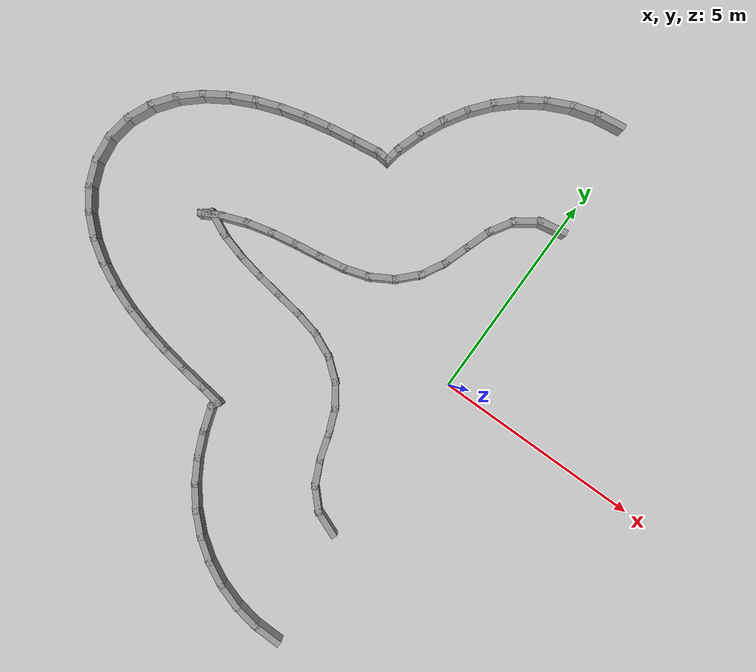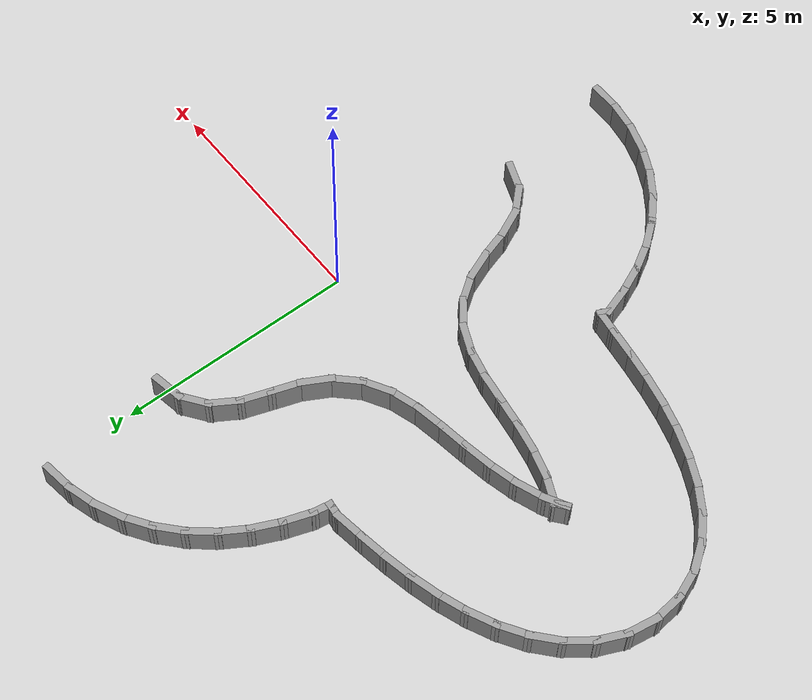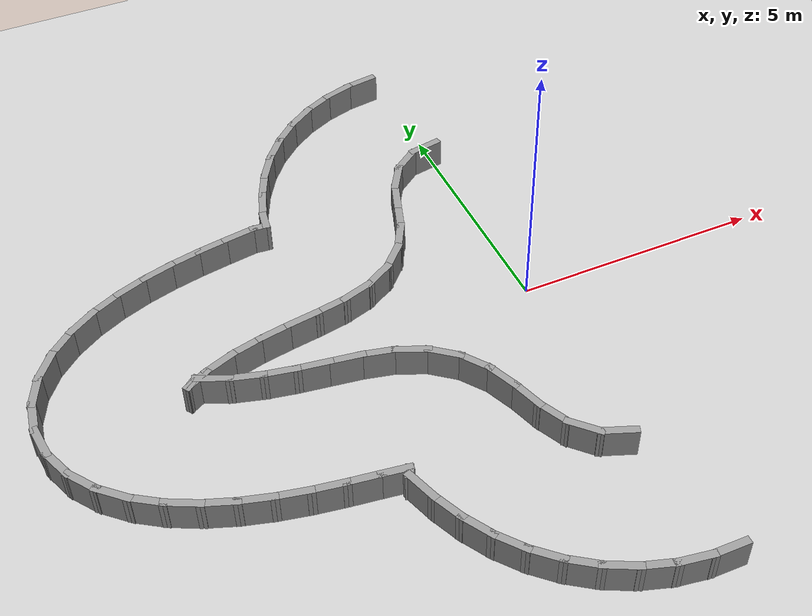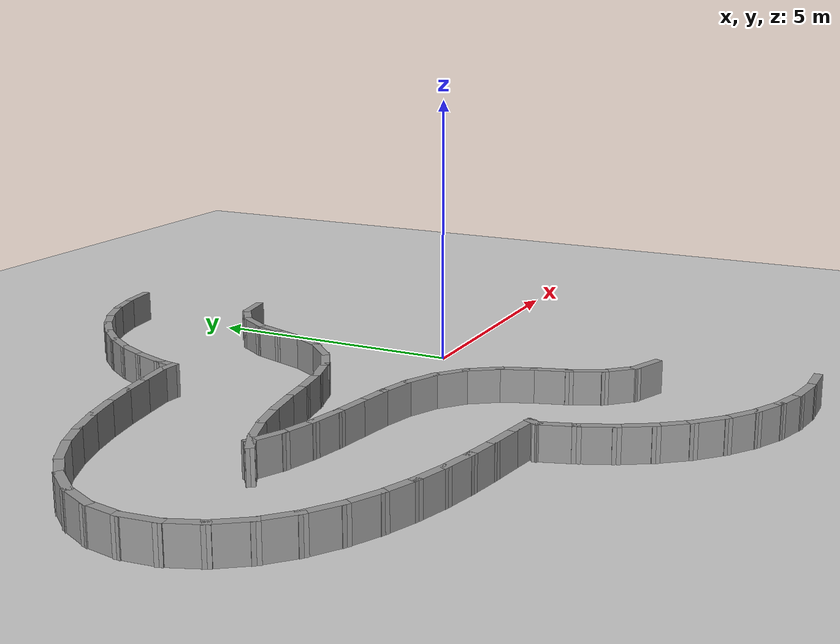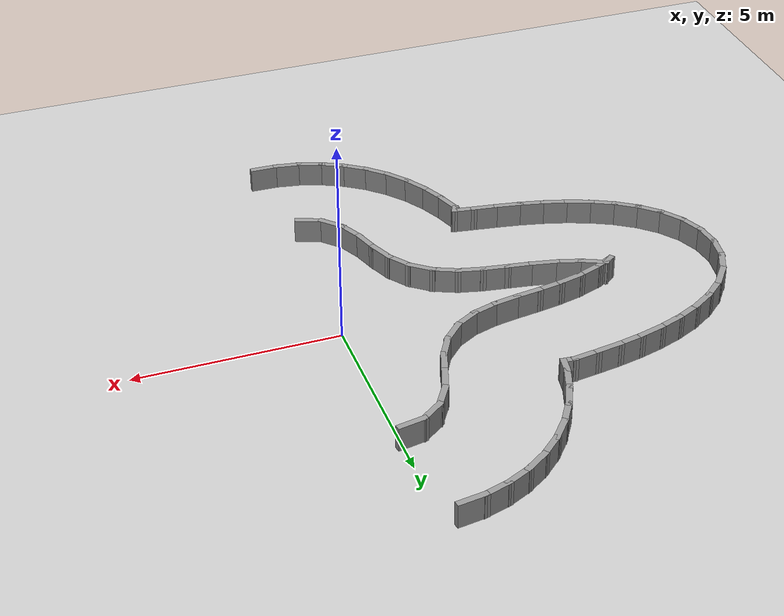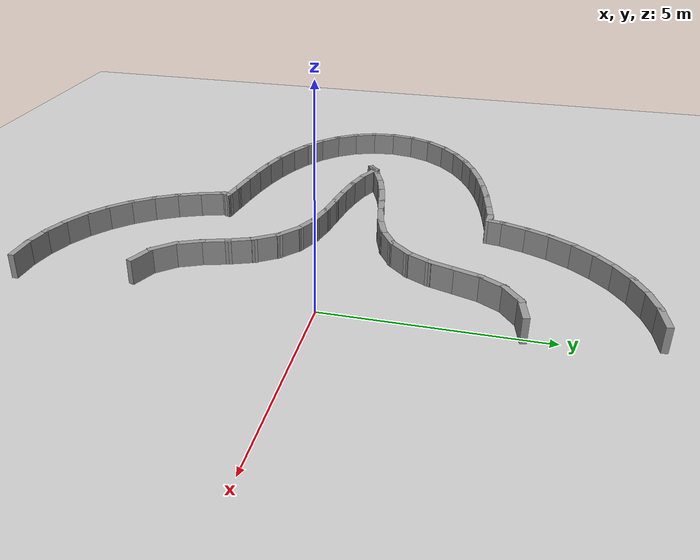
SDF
<sdf version="1.7">
 <world name="default">
  <model name="ground_plane">
   <static>1</static>
   <link name="link">
    <collision name="collision">
     <geometry><plane><normal>0 0 1</normal><size>100 100</size></plane></geometry>
     <surface><friction><ode><mu>100</mu><mu2>50</mu2></ode></friction></surface>
    </collision>
    <visual name="visual">
     <cast_shadows>0</cast_shadows>
     <geometry><plane><normal>0 0 1</normal><size>100 100</size></plane></geometry>
     <material>
      <script><uri>file://media/materials/scripts/gazebo.material</uri><name>Gazebo/Grey</name></script>
     </material>
    </visual>
   </link>
  </model>
  <model name="rand_lobed_05">
   <link name="Wall_15">
    <collision name="Wall_15_Collision">
     <geometry><box><size>0.7447 0.1500 0.6000</size></box></geometry>
     <pose>0 0 0.3000 0 -0 0</pose>
    </collision>
    <visual name="Wall_15_Visual">
     <pose>0 0 0.3000 0 -0 0</pose>
     <geometry><box><size>0.7447 0.1500 0.6000</size></box></geometry>
     <material>
      <script><uri>file://media/materials/scripts/gazebo.material</uri><name>Gazebo/Grey</name></script>
      <ambient>1 1 1 1</ambient>
     </material>
    </visual>
    <pose>-0.2285 4.2274 0 0 -0 -2.95936</pose>
   </link>
   <link name="Wall_16">
    <collision name="Wall_16_Collision">
     <geometry><box><size>0.7453 0.1500 0.6000</size></box></geometry>
     <pose>0 0 0.3000 0 -0 0</pose>
    </collision>
    <visual name="Wall_16_Visual">
     <pose>0 0 0.3000 0 -0 0</pose>
     <geometry><box><size>0.7453 0.1500 0.6000</size></box></geometry>
     <material>
      <script><uri>file://media/materials/scripts/gazebo.material</uri><name>Gazebo/Grey</name></script>
      <ambient>1 1 1 1</ambient>
     </material>
    </visual>
    <pose>-0.7605 3.9970 0 0 -0 -2.50664</pose>
   </link>
   <link name="Wall_17">
    <collision name="Wall_17_Collision">
     <geometry><box><size>0.7475 0.1500 0.6000</size></box></geometry>
     <pose>0 0 0.3000 0 -0 0</pose>
    </collision>
    <visual name="Wall_17_Visual">
     <pose>0 0 0.3000 0 -0 0</pose>
     <geometry><box><size>0.7475 0.1500 0.6000</size></box></geometry>
     <material>
      <script><uri>file://media/materials/scripts/gazebo.material</uri><name>Gazebo/Grey</name></script>
      <ambient>1 1 1 1</ambient>
     </material>
    </visual>
    <pose>-1.1570 3.5662 0 0 -0 -2.12377</pose>
   </link>
   <link name="Wall_18">
    <collision name="Wall_18_Collision">
     <geometry><box><size>0.7496 0.1500 0.6000</size></box></geometry>
     <pose>0 0 0.3000 0 -0 0</pose>
    </collision>
    <visual name="Wall_18_Visual">
     <pose>0 0 0.3000 0 -0 0</pose>
     <geometry><box><size>0.7496 0.1500 0.6000</size></box></geometry>
     <material>
      <script><uri>file://media/materials/scripts/gazebo.material</uri><name>Gazebo/Grey</name></script>
      <ambient>1 1 1 1</ambient>
     </material>
    </visual>
    <pose>-1.4110 3.0284 0 0 -0 -1.90061</pose>
   </link>
   <link name="Wall_19">
    <collision name="Wall_19_Collision">
     <geometry><box><size>0.7497 0.1500 0.6000</size></box></geometry>
     <pose>0 0 0.3000 0 -0 0</pose>
    </collision>
    <visual name="Wall_19_Visual">
     <pose>0 0 0.3000 0 -0 0</pose>
     <geometry><box><size>0.7497 0.1500 0.6000</size></box></geometry>
     <material>
      <script><uri>file://media/materials/scripts/gazebo.material</uri><name>Gazebo/Grey</name></script>
      <ambient>1 1 1 1</ambient>
     </material>
    </visual>
    <pose>-1.6033 2.4604 0 0 -0 -1.89381</pose>
   </link>
   <link name="Wall_20">
    <collision name="Wall_20_Collision">
     <geometry><box><size>0.7485 0.1500 0.6000</size></box></geometry>
     <pose>0 0 0.3000 0 -0 0</pose>
    </collision>
    <visual name="Wall_20_Visual">
     <pose>0 0 0.3000 0 -0 0</pose>
     <geometry><box><size>0.7485 0.1500 0.6000</size></box></geometry>
     <material>
      <script><uri>file://media/materials/scripts/gazebo.material</uri><name>Gazebo/Grey</name></script>
      <ambient>1 1 1 1</ambient>
     </material>
    </visual>
    <pose>-1.8424 1.9136 0 0 -0 -2.07239</pose>
   </link>
   <link name="Wall_21">
    <collision name="Wall_21_Collision">
     <geometry><box><size>0.7480 0.1500 0.6000</size></box></geometry>
     <pose>0 0 0.3000 0 -0 0</pose>
    </collision>
    <visual name="Wall_21_Visual">
     <pose>0 0 0.3000 0 -0 0</pose>
     <geometry><box><size>0.7480 0.1500 0.6000</size></box></geometry>
     <material>
      <script><uri>file://media/materials/scripts/gazebo.material</uri><name>Gazebo/Grey</name></script>
      <ambient>1 1 1 1</ambient>
     </material>
    </visual>
    <pose>-2.1940 1.4361 0 0 -0 -2.33864</pose>
   </link>
   <link name="Wall_22">
    <collision name="Wall_22_Collision">
     <geometry><box><size>0.7483 0.1500 0.6000</size></box></geometry>
     <pose>0 0 0.3000 0 -0 0</pose>
    </collision>
    <visual name="Wall_22_Visual">
     <pose>0 0 0.3000 0 -0 0</pose>
     <geometry><box><size>0.7483 0.1500 0.6000</size></box></geometry>
     <material>
      <script><uri>file://media/materials/scripts/gazebo.material</uri><name>Gazebo/Grey</name></script>
      <ambient>1 1 1 1</ambient>
     </material>
    </visual>
    <pose>-2.6602 1.0706 0 0 -0 -2.61456</pose>
   </link>
   <link name="Wall_23">
    <collision name="Wall_23_Collision">
     <geometry><box><size>0.7492 0.1500 0.6000</size></box></geometry>
     <pose>0 0 0.3000 0 -0 0</pose>
    </collision>
    <visual name="Wall_23_Visual">
     <pose>0 0 0.3000 0 -0 0</pose>
     <geometry><box><size>0.7492 0.1500 0.6000</size></box></geometry>
     <material>
      <script><uri>file://media/materials/scripts/gazebo.material</uri><name>Gazebo/Grey</name></script>
      <ambient>1 1 1 1</ambient>
     </material>
    </visual>
    <pose>-3.2048 0.8311 0 0 -0 -2.83980</pose>
   </link>
   <link name="Wall_24">
    <collision name="Wall_24_Collision">
     <geometry><box><size>0.7499 0.1500 0.6000</size></box></geometry>
     <pose>0 0 0.3000 0 -0 0</pose>
    </collision>
    <visual name="Wall_24_Visual">
     <pose>0 0 0.3000 0 -0 0</pose>
     <geometry><box><size>0.7499 0.1500 0.6000</size></box></geometry>
     <material>
      <script><uri>file://media/materials/scripts/gazebo.material</uri><name>Gazebo/Grey</name></script>
      <ambient>1 1 1 1</ambient>
     </material>
    </visual>
    <pose>-3.7862 0.6898 0 0 -0 -2.96652</pose>
   </link>
   <link name="Wall_25">
    <collision name="Wall_25_Collision">
     <geometry><box><size>0.7500 0.1500 0.6000</size></box></geometry>
     <pose>0 0 0.3000 0 -0 0</pose>
    </collision>
    <visual name="Wall_25_Visual">
     <pose>0 0 0.3000 0 -0 0</pose>
     <geometry><box><size>0.7500 0.1500 0.6000</size></box></geometry>
     <material>
      <script><uri>file://media/materials/scripts/gazebo.material</uri><name>Gazebo/Grey</name></script>
      <ambient>1 1 1 1</ambient>
     </material>
    </visual>
    <pose>-4.3784 0.5946 0 0 -0 -2.99791</pose>
   </link>
   <link name="Wall_26">
    <collision name="Wall_26_Collision">
     <geometry><box><size>0.7499 0.1500 0.6000</size></box></geometry>
     <pose>0 0 0.3000 0 -0 0</pose>
    </collision>
    <visual name="Wall_26_Visual">
     <pose>0 0 0.3000 0 -0 0</pose>
     <geometry><box><size>0.7499 0.1500 0.6000</size></box></geometry>
     <material>
      <script><uri>file://media/materials/scripts/gazebo.material</uri><name>Gazebo/Grey</name></script>
      <ambient>1 1 1 1</ambient>
     </material>
    </visual>
    <pose>-4.9709 0.5002 0 0 -0 -2.96922</pose>
   </link>
   <link name="Wall_27">
    <collision name="Wall_27_Collision">
     <geometry><box><size>0.7498 0.1500 0.6000</size></box></geometry>
     <pose>0 0 0.3000 0 -0 0</pose>
    </collision>
    <visual name="Wall_27_Visual">
     <pose>0 0 0.3000 0 -0 0</pose>
     <geometry><box><size>0.7498 0.1500 0.6000</size></box></geometry>
     <material>
      <script><uri>file://media/materials/scripts/gazebo.material</uri><name>Gazebo/Grey</name></script>
      <ambient>1 1 1 1</ambient>
     </material>
    </visual>
    <pose>-5.5576 0.3771 0 0 -0 -2.90050</pose>
   </link>
   <link name="Wall_28">
    <collision name="Wall_28_Collision">
     <geometry><box><size>0.7494 0.1500 0.6000</size></box></geometry>
     <pose>0 0 0.3000 0 -0 0</pose>
    </collision>
    <visual name="Wall_28_Visual">
     <pose>0 0 0.3000 0 -0 0</pose>
     <geometry><box><size>0.7494 0.1500 0.6000</size></box></geometry>
     <material>
      <script><uri>file://media/materials/scripts/gazebo.material</uri><name>Gazebo/Grey</name></script>
      <ambient>1 1 1 1</ambient>
     </material>
    </visual>
    <pose>-6.1297 0.2008 0 0 -0 -2.78472</pose>
   </link>
   <link name="Wall_29">
    <collision name="Wall_29_Collision">
     <geometry><box><size>0.6137 0.1500 0.6000</size></box></geometry>
     <pose>0 0 0.3000 0 -0 0</pose>
    </collision>
    <visual name="Wall_29_Visual">
     <pose>0 0 0.3000 0 -0 0</pose>
     <geometry><box><size>0.6137 0.1500 0.6000</size></box></geometry>
     <material>
      <script><uri>file://media/materials/scripts/gazebo.material</uri><name>Gazebo/Grey</name></script>
      <ambient>1 1 1 1</ambient>
     </material>
    </visual>
    <pose>-6.6139 -0.0151 0 0 -0 -2.64142</pose>
   </link>
   <link name="Wall_30">
    <collision name="Wall_30_Collision">
     <geometry><box><size>0.3865 0.1500 0.6000</size></box></geometry>
     <pose>0 0 0.3000 0 -0 0</pose>
    </collision>
    <visual name="Wall_30_Visual">
     <pose>0 0 0.3000 0 -0 0</pose>
     <geometry><box><size>0.3865 0.1500 0.6000</size></box></geometry>
     <material>
      <script><uri>file://media/materials/scripts/gazebo.material</uri><name>Gazebo/Grey</name></script>
      <ambient>1 1 1 1</ambient>
     </material>
    </visual>
    <pose>-6.7265 -0.0506 0 0 -0 0.69460</pose>
   </link>
   <link name="Wall_31">
    <collision name="Wall_31_Collision">
     <geometry><box><size>0.7489 0.1500 0.6000</size></box></geometry>
     <pose>0 0 0.3000 0 -0 0</pose>
    </collision>
    <visual name="Wall_31_Visual">
     <pose>0 0 0.3000 0 -0 0</pose>
     <geometry><box><size>0.7489 0.1500 0.6000</size></box></geometry>
     <material>
      <script><uri>file://media/materials/scripts/gazebo.material</uri><name>Gazebo/Grey</name></script>
      <ambient>1 1 1 1</ambient>
     </material>
    </visual>
    <pose>-6.3639 -0.1006 0 0 -0 -0.43334</pose>
   </link>
   <link name="Wall_32">
    <collision name="Wall_32_Collision">
     <geometry><box><size>0.7497 0.1500 0.6000</size></box></geometry>
     <pose>0 0 0.3000 0 -0 0</pose>
    </collision>
    <visual name="Wall_32_Visual">
     <pose>0 0 0.3000 0 -0 0</pose>
     <geometry><box><size>0.7497 0.1500 0.6000</size></box></geometry>
     <material>
      <script><uri>file://media/materials/scripts/gazebo.material</uri><name>Gazebo/Grey</name></script>
      <ambient>1 1 1 1</ambient>
     </material>
    </visual>
    <pose>-5.8042 -0.3101 0 0 -0 -0.28306</pose>
   </link>
   <link name="Wall_33">
    <collision name="Wall_33_Collision">
     <geometry><box><size>0.7499 0.1500 0.6000</size></box></geometry>
     <pose>0 0 0.3000 0 -0 0</pose>
    </collision>
    <visual name="Wall_33_Visual">
     <pose>0 0 0.3000 0 -0 0</pose>
     <geometry><box><size>0.7499 0.1500 0.6000</size></box></geometry>
     <material>
      <script><uri>file://media/materials/scripts/gazebo.material</uri><name>Gazebo/Grey</name></script>
      <ambient>1 1 1 1</ambient>
     </material>
    </visual>
    <pose>-5.2221 -0.4526 0 0 -0 -0.19705</pose>
   </link>
   <link name="Wall_34">
    <collision name="Wall_34_Collision">
     <geometry><box><size>0.7500 0.1500 0.6000</size></box></geometry>
     <pose>0 0 0.3000 0 -0 0</pose>
    </collision>
    <visual name="Wall_34_Visual">
     <pose>0 0 0.3000 0 -0 0</pose>
     <geometry><box><size>0.7500 0.1500 0.6000</size></box></geometry>
     <material>
      <script><uri>file://media/materials/scripts/gazebo.material</uri><name>Gazebo/Grey</name></script>
      <ambient>1 1 1 1</ambient>
     </material>
    </visual>
    <pose>-4.6314 -0.5562 0 0 -0 -0.15031</pose>
   </link>
   <link name="Wall_35">
    <collision name="Wall_35_Collision">
     <geometry><box><size>0.7500 0.1500 0.6000</size></box></geometry>
     <pose>0 0 0.3000 0 -0 0</pose>
    </collision>
    <visual name="Wall_35_Visual">
     <pose>0 0 0.3000 0 -0 0</pose>
     <geometry><box><size>0.7500 0.1500 0.6000</size></box></geometry>
     <material>
      <script><uri>file://media/materials/scripts/gazebo.material</uri><name>Gazebo/Grey</name></script>
      <ambient>1 1 1 1</ambient>
     </material>
    </visual>
    <pose>-4.0382 -0.6466 0 0 -0 -0.15204</pose>
   </link>
   <link name="Wall_36">
    <collision name="Wall_36_Collision">
     <geometry><box><size>0.7495 0.1500 0.6000</size></box></geometry>
     <pose>0 0 0.3000 0 -0 0</pose>
    </collision>
    <visual name="Wall_36_Visual">
     <pose>0 0 0.3000 0 -0 0</pose>
     <geometry><box><size>0.7495 0.1500 0.6000</size></box></geometry>
     <material>
      <script><uri>file://media/materials/scripts/gazebo.material</uri><name>Gazebo/Grey</name></script>
      <ambient>1 1 1 1</ambient>
     </material>
    </visual>
    <pose>-3.4501 -0.7616 0 0 -0 -0.23445</pose>
   </link>
   <link name="Wall_37">
    <collision name="Wall_37_Collision">
     <geometry><box><size>0.7486 0.1500 0.6000</size></box></geometry>
     <pose>0 0 0.3000 0 -0 0</pose>
    </collision>
    <visual name="Wall_37_Visual">
     <pose>0 0 0.3000 0 -0 0</pose>
     <geometry><box><size>0.7486 0.1500 0.6000</size></box></geometry>
     <material>
      <script><uri>file://media/materials/scripts/gazebo.material</uri><name>Gazebo/Grey</name></script>
      <ambient>1 1 1 1</ambient>
     </material>
    </visual>
    <pose>-2.8854 -0.9537 0 0 -0 -0.42127</pose>
   </link>
   <link name="Wall_38">
    <collision name="Wall_38_Collision">
     <geometry><box><size>0.7480 0.1500 0.6000</size></box></geometry>
     <pose>0 0 0.3000 0 -0 0</pose>
    </collision>
    <visual name="Wall_38_Visual">
     <pose>0 0 0.3000 0 -0 0</pose>
     <geometry><box><size>0.7480 0.1500 0.6000</size></box></geometry>
     <material>
      <script><uri>file://media/materials/scripts/gazebo.material</uri><name>Gazebo/Grey</name></script>
      <ambient>1 1 1 1</ambient>
     </material>
    </visual>
    <pose>-2.3803 -1.2648 0 0 -0 -0.68290</pose>
   </link>
   <link name="Wall_39">
    <collision name="Wall_39_Collision">
     <geometry><box><size>0.7482 0.1500 0.6000</size></box></geometry>
     <pose>0 0 0.3000 0 -0 0</pose>
    </collision>
    <visual name="Wall_39_Visual">
     <pose>0 0 0.3000 0 -0 0</pose>
     <geometry><box><size>0.7482 0.1500 0.6000</size></box></geometry>
     <material>
      <script><uri>file://media/materials/scripts/gazebo.material</uri><name>Gazebo/Grey</name></script>
      <ambient>1 1 1 1</ambient>
     </material>
    </visual>
    <pose>-1.9771 -1.6987 0 0 -0 -0.96118</pose>
   </link>
   <link name="Wall_40">
    <collision name="Wall_40_Collision">
     <geometry><box><size>0.7492 0.1500 0.6000</size></box></geometry>
     <pose>0 0 0.3000 0 -0 0</pose>
    </collision>
    <visual name="Wall_40_Visual">
     <pose>0 0 0.3000 0 -0 0</pose>
     <geometry><box><size>0.7492 0.1500 0.6000</size></box></geometry>
     <material>
      <script><uri>file://media/materials/scripts/gazebo.material</uri><name>Gazebo/Grey</name></script>
      <ambient>1 1 1 1</ambient>
     </material>
    </visual>
    <pose>-1.6942 -2.2219 0 0 -0 -1.18884</pose>
   </link>
   <link name="Wall_41">
    <collision name="Wall_41_Collision">
     <geometry><box><size>0.7500 0.1500 0.6000</size></box></geometry>
     <pose>0 0 0.3000 0 -0 0</pose>
    </collision>
    <visual name="Wall_41_Visual">
     <pose>0 0 0.3000 0 -0 0</pose>
     <geometry><box><size>0.7500 0.1500 0.6000</size></box></geometry>
     <material>
      <script><uri>file://media/materials/scripts/gazebo.material</uri><name>Gazebo/Grey</name></script>
      <ambient>1 1 1 1</ambient>
     </material>
    </visual>
    <pose>-1.4940 -2.7866 0 0 -0 -1.27118</pose>
   </link>
   <link name="Wall_42">
    <collision name="Wall_42_Collision">
     <geometry><box><size>0.7485 0.1500 0.6000</size></box></geometry>
     <pose>0 0 0.3000 0 -0 0</pose>
    </collision>
    <visual name="Wall_42_Visual">
     <pose>0 0 0.3000 0 -0 0</pose>
     <geometry><box><size>0.7485 0.1500 0.6000</size></box></geometry>
     <material>
      <script><uri>file://media/materials/scripts/gazebo.material</uri><name>Gazebo/Grey</name></script>
      <ambient>1 1 1 1</ambient>
     </material>
    </visual>
    <pose>-1.2797 -3.3447 0 0 -0 -1.13705</pose>
   </link>
   <link name="Wall_43">
    <collision name="Wall_43_Collision">
     <geometry><box><size>0.7461 0.1500 0.6000</size></box></geometry>
     <pose>0 0 0.3000 0 -0 0</pose>
    </collision>
    <visual name="Wall_43_Visual">
     <pose>0 0 0.3000 0 -0 0</pose>
     <geometry><box><size>0.7461 0.1500 0.6000</size></box></geometry>
     <material>
      <script><uri>file://media/materials/scripts/gazebo.material</uri><name>Gazebo/Grey</name></script>
      <ambient>1 1 1 1</ambient>
     </material>
    </visual>
    <pose>-0.9489 -3.8326 0 0 -0 -0.81211</pose>
   </link>
   <link name="Wall_44">
    <collision name="Wall_44_Collision">
     <geometry><box><size>0.7448 0.1500 0.6000</size></box></geometry>
     <pose>0 0 0.3000 0 -0 0</pose>
    </collision>
    <visual name="Wall_44_Visual">
     <pose>0 0 0.3000 0 -0 0</pose>
     <geometry><box><size>0.7448 0.1500 0.6000</size></box></geometry>
     <material>
      <script><uri>file://media/materials/scripts/gazebo.material</uri><name>Gazebo/Grey</name></script>
      <ambient>1 1 1 1</ambient>
     </material>
    </visual>
    <pose>-0.4675 -4.1588 0 0 -0 -0.37857</pose>
   </link>
   <link name="Wall_83">
    <collision name="Wall_83_Collision">
     <geometry><box><size>0.7494 0.1500 0.6000</size></box></geometry>
     <pose>0 0 0.3000 0 -0 0</pose>
    </collision>
    <visual name="Wall_83_Visual">
     <pose>0 0 0.3000 0 -0 0</pose>
     <geometry><box><size>0.7494 0.1500 0.6000</size></box></geometry>
     <material>
      <script><uri>file://media/materials/scripts/gazebo.material</uri><name>Gazebo/Grey</name></script>
      <ambient>1 1 1 1</ambient>
     </material>
    </visual>
    <pose>-0.5665 6.9264 0 0 -0 -2.99865</pose>
   </link>
   <link name="Wall_84">
    <collision name="Wall_84_Collision">
     <geometry><box><size>0.7494 0.1500 0.6000</size></box></geometry>
     <pose>0 0 0.3000 0 -0 0</pose>
    </collision>
    <visual name="Wall_84_Visual">
     <pose>0 0 0.3000 0 -0 0</pose>
     <geometry><box><size>0.7494 0.1500 0.6000</size></box></geometry>
     <material>
      <script><uri>file://media/materials/scripts/gazebo.material</uri><name>Gazebo/Grey</name></script>
      <ambient>1 1 1 1</ambient>
     </material>
    </visual>
    <pose>-1.1500 6.7971 0 0 -0 -2.84837</pose>
   </link>
   <link name="Wall_85">
    <collision name="Wall_85_Collision">
     <geometry><box><size>0.7494 0.1500 0.6000</size></box></geometry>
     <pose>0 0 0.3000 0 -0 0</pose>
    </collision>
    <visual name="Wall_85_Visual">
     <pose>0 0 0.3000 0 -0 0</pose>
     <geometry><box><size>0.7494 0.1500 0.6000</size></box></geometry>
     <material>
      <script><uri>file://media/materials/scripts/gazebo.material</uri><name>Gazebo/Grey</name></script>
      <ambient>1 1 1 1</ambient>
     </material>
    </visual>
    <pose>-1.7077 6.5820 0 0 -0 -2.69851</pose>
   </link>
   <link name="Wall_86">
    <collision name="Wall_86_Collision">
     <geometry><box><size>0.7494 0.1500 0.6000</size></box></geometry>
     <pose>0 0 0.3000 0 -0 0</pose>
    </collision>
    <visual name="Wall_86_Visual">
     <pose>0 0 0.3000 0 -0 0</pose>
     <geometry><box><size>0.7494 0.1500 0.6000</size></box></geometry>
     <material>
      <script><uri>file://media/materials/scripts/gazebo.material</uri><name>Gazebo/Grey</name></script>
      <ambient>1 1 1 1</ambient>
     </material>
    </visual>
    <pose>-2.2272 6.2862 0 0 -0 -2.54953</pose>
   </link>
   <link name="Wall_87">
    <collision name="Wall_87_Collision">
     <geometry><box><size>0.7495 0.1500 0.6000</size></box></geometry>
     <pose>0 0 0.3000 0 -0 0</pose>
    </collision>
    <visual name="Wall_87_Visual">
     <pose>0 0 0.3000 0 -0 0</pose>
     <geometry><box><size>0.7495 0.1500 0.6000</size></box></geometry>
     <material>
      <script><uri>file://media/materials/scripts/gazebo.material</uri><name>Gazebo/Grey</name></script>
      <ambient>1 1 1 1</ambient>
     </material>
    </visual>
    <pose>-2.6975 5.9171 0 0 -0 -2.40278</pose>
   </link>
   <link name="Wall_88">
    <collision name="Wall_88_Collision">
     <geometry><box><size>0.7495 0.1500 0.6000</size></box></geometry>
     <pose>0 0 0.3000 0 -0 0</pose>
    </collision>
    <visual name="Wall_88_Visual">
     <pose>0 0 0.3000 0 -0 0</pose>
     <geometry><box><size>0.7495 0.1500 0.6000</size></box></geometry>
     <material>
      <script><uri>file://media/materials/scripts/gazebo.material</uri><name>Gazebo/Grey</name></script>
      <ambient>1 1 1 1</ambient>
     </material>
    </visual>
    <pose>-3.1097 5.4839 0 0 -0 -2.25977</pose>
   </link>
   <link name="Wall_89">
    <collision name="Wall_89_Collision">
     <geometry><box><size>0.7496 0.1500 0.6000</size></box></geometry>
     <pose>0 0 0.3000 0 -0 0</pose>
    </collision>
    <visual name="Wall_89_Visual">
     <pose>0 0 0.3000 0 -0 0</pose>
     <geometry><box><size>0.7496 0.1500 0.6000</size></box></geometry>
     <material>
      <script><uri>file://media/materials/scripts/gazebo.material</uri><name>Gazebo/Grey</name></script>
      <ambient>1 1 1 1</ambient>
     </material>
    </visual>
    <pose>-3.4576 4.9973 0 0 -0 -2.12350</pose>
   </link>
   <link name="Wall_90">
    <collision name="Wall_90_Collision">
     <geometry><box><size>0.7497 0.1500 0.6000</size></box></geometry>
     <pose>0 0 0.3000 0 -0 0</pose>
    </collision>
    <visual name="Wall_90_Visual">
     <pose>0 0 0.3000 0 -0 0</pose>
     <geometry><box><size>0.7497 0.1500 0.6000</size></box></geometry>
     <material>
      <script><uri>file://media/materials/scripts/gazebo.material</uri><name>Gazebo/Grey</name></script>
      <ambient>1 1 1 1</ambient>
     </material>
    </visual>
    <pose>-3.7395 4.4694 0 0 -0 -1.99899</pose>
   </link>
   <link name="Wall_91">
    <collision name="Wall_91_Collision">
     <geometry><box><size>0.7498 0.1500 0.6000</size></box></geometry>
     <pose>0 0 0.3000 0 -0 0</pose>
    </collision>
    <visual name="Wall_91_Visual">
     <pose>0 0 0.3000 0 -0 0</pose>
     <geometry><box><size>0.7498 0.1500 0.6000</size></box></geometry>
     <material>
      <script><uri>file://media/materials/scripts/gazebo.material</uri><name>Gazebo/Grey</name></script>
      <ambient>1 1 1 1</ambient>
     </material>
    </visual>
    <pose>-3.9605 3.9127 0 0 -0 -1.89849</pose>
   </link>
   <link name="Wall_92">
    <collision name="Wall_92_Collision">
     <geometry><box><size>0.4877 0.1500 0.6000</size></box></geometry>
     <pose>0 0 0.3000 0 -0 0</pose>
    </collision>
    <visual name="Wall_92_Visual">
     <pose>0 0 0.3000 0 -0 0</pose>
     <geometry><box><size>0.4877 0.1500 0.6000</size></box></geometry>
     <material>
      <script><uri>file://media/materials/scripts/gazebo.material</uri><name>Gazebo/Grey</name></script>
      <ambient>1 1 1 1</ambient>
     </material>
    </visual>
    <pose>-4.0861 3.4624 0 0 -0 -1.74354</pose>
   </link>
   <link name="Wall_93">
    <collision name="Wall_93_Collision">
     <geometry><box><size>0.4160 0.1500 0.6000</size></box></geometry>
     <pose>0 0 0.3000 0 -0 0</pose>
    </collision>
    <visual name="Wall_93_Visual">
     <pose>0 0 0.3000 0 -0 0</pose>
     <geometry><box><size>0.4160 0.1500 0.6000</size></box></geometry>
     <material>
      <script><uri>file://media/materials/scripts/gazebo.material</uri><name>Gazebo/Grey</name></script>
      <ambient>1 1 1 1</ambient>
     </material>
    </visual>
    <pose>-4.2476 3.3072 0 0 -0 3.05807</pose>
   </link>
   <link name="Wall_94">
    <collision name="Wall_94_Collision">
     <geometry><box><size>0.7500 0.1500 0.6000</size></box></geometry>
     <pose>0 0 0.3000 0 -0 0</pose>
    </collision>
    <visual name="Wall_94_Visual">
     <pose>0 0 0.3000 0 -0 0</pose>
     <geometry><box><size>0.7500 0.1500 0.6000</size></box></geometry>
     <material>
      <script><uri>file://media/materials/scripts/gazebo.material</uri><name>Gazebo/Grey</name></script>
      <ambient>1 1 1 1</ambient>
     </material>
    </visual>
    <pose>-4.6771 3.2753 0 0 -0 -2.99771</pose>
   </link>
   <link name="Wall_95">
    <collision name="Wall_95_Collision">
     <geometry><box><size>0.7500 0.1500 0.6000</size></box></geometry>
     <pose>0 0 0.3000 0 -0 0</pose>
    </collision>
    <visual name="Wall_95_Visual">
     <pose>0 0 0.3000 0 -0 0</pose>
     <geometry><box><size>0.7500 0.1500 0.6000</size></box></geometry>
     <material>
      <script><uri>file://media/materials/scripts/gazebo.material</uri><name>Gazebo/Grey</name></script>
      <ambient>1 1 1 1</ambient>
     </material>
    </visual>
    <pose>-5.2701 3.1840 0 0 -0 -2.98006</pose>
   </link>
   <link name="Wall_96">
    <collision name="Wall_96_Collision">
     <geometry><box><size>0.7499 0.1500 0.6000</size></box></geometry>
     <pose>0 0 0.3000 0 -0 0</pose>
    </collision>
    <visual name="Wall_96_Visual">
     <pose>0 0 0.3000 0 -0 0</pose>
     <geometry><box><size>0.7499 0.1500 0.6000</size></box></geometry>
     <material>
      <script><uri>file://media/materials/scripts/gazebo.material</uri><name>Gazebo/Grey</name></script>
      <ambient>1 1 1 1</ambient>
     </material>
    </visual>
    <pose>-5.8597 3.0743 0 0 -0 -2.93527</pose>
   </link>
   <link name="Wall_97">
    <collision name="Wall_97_Collision">
     <geometry><box><size>0.7499 0.1500 0.6000</size></box></geometry>
     <pose>0 0 0.3000 0 -0 0</pose>
    </collision>
    <visual name="Wall_97_Visual">
     <pose>0 0 0.3000 0 -0 0</pose>
     <geometry><box><size>0.7499 0.1500 0.6000</size></box></geometry>
     <material>
      <script><uri>file://media/materials/scripts/gazebo.material</uri><name>Gazebo/Grey</name></script>
      <ambient>1 1 1 1</ambient>
     </material>
    </visual>
    <pose>-6.4426 2.9335 0 0 -0 -2.87355</pose>
   </link>
   <link name="Wall_98">
    <collision name="Wall_98_Collision">
     <geometry><box><size>0.7498 0.1500 0.6000</size></box></geometry>
     <pose>0 0 0.3000 0 -0 0</pose>
    </collision>
    <visual name="Wall_98_Visual">
     <pose>0 0 0.3000 0 -0 0</pose>
     <geometry><box><size>0.7498 0.1500 0.6000</size></box></geometry>
     <material>
      <script><uri>file://media/materials/scripts/gazebo.material</uri><name>Gazebo/Grey</name></script>
      <ambient>1 1 1 1</ambient>
     </material>
    </visual>
    <pose>-7.0139 2.7523 0 0 -0 -2.79552</pose>
   </link>
   <link name="Wall_99">
    <collision name="Wall_99_Collision">
     <geometry><box><size>0.7497 0.1500 0.6000</size></box></geometry>
     <pose>0 0 0.3000 0 -0 0</pose>
    </collision>
    <visual name="Wall_99_Visual">
     <pose>0 0 0.3000 0 -0 0</pose>
     <geometry><box><size>0.7497 0.1500 0.6000</size></box></geometry>
     <material>
      <script><uri>file://media/materials/scripts/gazebo.material</uri><name>Gazebo/Grey</name></script>
      <ambient>1 1 1 1</ambient>
     </material>
    </visual>
    <pose>-7.5668 2.5218 0 0 -0 -2.69755</pose>
   </link>
   <link name="Wall_100">
    <collision name="Wall_100_Collision">
     <geometry><box><size>0.7495 0.1500 0.6000</size></box></geometry>
     <pose>0 0 0.3000 0 -0 0</pose>
    </collision>
    <visual name="Wall_100_Visual">
     <pose>0 0 0.3000 0 -0 0</pose>
     <geometry><box><size>0.7495 0.1500 0.6000</size></box></geometry>
     <material>
      <script><uri>file://media/materials/scripts/gazebo.material</uri><name>Gazebo/Grey</name></script>
      <ambient>1 1 1 1</ambient>
     </material>
    </visual>
    <pose>-8.0903 2.2318 0 0 -0 -2.57387</pose>
   </link>
   <link name="Wall_101">
    <collision name="Wall_101_Collision">
     <geometry><box><size>0.7492 0.1500 0.6000</size></box></geometry>
     <pose>0 0 0.3000 0 -0 0</pose>
    </collision>
    <visual name="Wall_101_Visual">
     <pose>0 0 0.3000 0 -0 0</pose>
     <geometry><box><size>0.7492 0.1500 0.6000</size></box></geometry>
     <material>
      <script><uri>file://media/materials/scripts/gazebo.material</uri><name>Gazebo/Grey</name></script>
      <ambient>1 1 1 1</ambient>
     </material>
    </visual>
    <pose>-8.5674 1.8720 0 0 -0 -2.41696</pose>
   </link>
   <link name="Wall_102">
    <collision name="Wall_102_Collision">
     <geometry><box><size>0.7488 0.1500 0.6000</size></box></geometry>
     <pose>0 0 0.3000 0 -0 0</pose>
    </collision>
    <visual name="Wall_102_Visual">
     <pose>0 0 0.3000 0 -0 0</pose>
     <geometry><box><size>0.7488 0.1500 0.6000</size></box></geometry>
     <material>
      <script><uri>file://media/materials/scripts/gazebo.material</uri><name>Gazebo/Grey</name></script>
      <ambient>1 1 1 1</ambient>
     </material>
    </visual>
    <pose>-8.9732 1.4352 0 0 -0 -2.22186</pose>
   </link>
   <link name="Wall_103">
    <collision name="Wall_103_Collision">
     <geometry><box><size>0.7484 0.1500 0.6000</size></box></geometry>
     <pose>0 0 0.3000 0 -0 0</pose>
    </collision>
    <visual name="Wall_103_Visual">
     <pose>0 0 0.3000 0 -0 0</pose>
     <geometry><box><size>0.7484 0.1500 0.6000</size></box></geometry>
     <material>
      <script><uri>file://media/materials/scripts/gazebo.material</uri><name>Gazebo/Grey</name></script>
      <ambient>1 1 1 1</ambient>
     </material>
    </visual>
    <pose>-9.2764 0.9237 0 0 -0 -1.99000</pose>
   </link>
   <link name="Wall_104">
    <collision name="Wall_104_Collision">
     <geometry><box><size>0.7482 0.1500 0.6000</size></box></geometry>
     <pose>0 0 0.3000 0 -0 0</pose>
    </collision>
    <visual name="Wall_104_Visual">
     <pose>0 0 0.3000 0 -0 0</pose>
     <geometry><box><size>0.7482 0.1500 0.6000</size></box></geometry>
     <material>
      <script><uri>file://media/materials/scripts/gazebo.material</uri><name>Gazebo/Grey</name></script>
      <ambient>1 1 1 1</ambient>
     </material>
    </visual>
    <pose>-9.4463 0.3552 0 0 -0 -1.73213</pose>
   </link>
   <link name="Wall_105">
    <collision name="Wall_105_Collision">
     <geometry><box><size>0.7482 0.1500 0.6000</size></box></geometry>
     <pose>0 0 0.3000 0 -0 0</pose>
    </collision>
    <visual name="Wall_105_Visual">
     <pose>0 0 0.3000 0 -0 0</pose>
     <geometry><box><size>0.7482 0.1500 0.6000</size></box></geometry>
     <material>
      <script><uri>file://media/materials/scripts/gazebo.material</uri><name>Gazebo/Grey</name></script>
      <ambient>1 1 1 1</ambient>
     </material>
    </visual>
    <pose>-9.4621 -0.2374 0 0 -0 -1.46287</pose>
   </link>
   <link name="Wall_106">
    <collision name="Wall_106_Collision">
     <geometry><box><size>0.7484 0.1500 0.6000</size></box></geometry>
     <pose>0 0 0.3000 0 -0 0</pose>
    </collision>
    <visual name="Wall_106_Visual">
     <pose>0 0 0.3000 0 -0 0</pose>
     <geometry><box><size>0.7484 0.1500 0.6000</size></box></geometry>
     <material>
      <script><uri>file://media/materials/scripts/gazebo.material</uri><name>Gazebo/Grey</name></script>
      <ambient>1 1 1 1</ambient>
     </material>
    </visual>
    <pose>-9.3219 -0.8138 0 0 -0 -1.20159</pose>
   </link>
   <link name="Wall_107">
    <collision name="Wall_107_Collision">
     <geometry><box><size>0.7488 0.1500 0.6000</size></box></geometry>
     <pose>0 0 0.3000 0 -0 0</pose>
    </collision>
    <visual name="Wall_107_Visual">
     <pose>0 0 0.3000 0 -0 0</pose>
     <geometry><box><size>0.7488 0.1500 0.6000</size></box></geometry>
     <material>
      <script><uri>file://media/materials/scripts/gazebo.material</uri><name>Gazebo/Grey</name></script>
      <ambient>1 1 1 1</ambient>
     </material>
    </visual>
    <pose>-9.0430 -1.3386 0 0 -0 -0.96329</pose>
   </link>
   <link name="Wall_108">
    <collision name="Wall_108_Collision">
     <geometry><box><size>0.7491 0.1500 0.6000</size></box></geometry>
     <pose>0 0 0.3000 0 -0 0</pose>
    </collision>
    <visual name="Wall_108_Visual">
     <pose>0 0 0.3000 0 -0 0</pose>
     <geometry><box><size>0.7491 0.1500 0.6000</size></box></geometry>
     <material>
      <script><uri>file://media/materials/scripts/gazebo.material</uri><name>Gazebo/Grey</name></script>
      <ambient>1 1 1 1</ambient>
     </material>
    </visual>
    <pose>-8.6551 -1.7909 0 0 -0 -0.76049</pose>
   </link>
   <link name="Wall_109">
    <collision name="Wall_109_Collision">
     <geometry><box><size>0.7495 0.1500 0.6000</size></box></geometry>
     <pose>0 0 0.3000 0 -0 0</pose>
    </collision>
    <visual name="Wall_109_Visual">
     <pose>0 0 0.3000 0 -0 0</pose>
     <geometry><box><size>0.7495 0.1500 0.6000</size></box></geometry>
     <material>
      <script><uri>file://media/materials/scripts/gazebo.material</uri><name>Gazebo/Grey</name></script>
      <ambient>1 1 1 1</ambient>
     </material>
    </visual>
    <pose>-8.1901 -2.1657 0 0 -0 -0.59634</pose>
   </link>
   <link name="Wall_110">
    <collision name="Wall_110_Collision">
     <geometry><box><size>0.7497 0.1500 0.6000</size></box></geometry>
     <pose>0 0 0.3000 0 -0 0</pose>
    </collision>
    <visual name="Wall_110_Visual">
     <pose>0 0 0.3000 0 -0 0</pose>
     <geometry><box><size>0.7497 0.1500 0.6000</size></box></geometry>
     <material>
      <script><uri>file://media/materials/scripts/gazebo.material</uri><name>Gazebo/Grey</name></script>
      <ambient>1 1 1 1</ambient>
     </material>
    </visual>
    <pose>-7.6743 -2.4689 0 0 -0 -0.46635</pose>
   </link>
   <link name="Wall_111">
    <collision name="Wall_111_Collision">
     <geometry><box><size>0.7498 0.1500 0.6000</size></box></geometry>
     <pose>0 0 0.3000 0 -0 0</pose>
    </collision>
    <visual name="Wall_111_Visual">
     <pose>0 0 0.3000 0 -0 0</pose>
     <geometry><box><size>0.7498 0.1500 0.6000</size></box></geometry>
     <material>
      <script><uri>file://media/materials/scripts/gazebo.material</uri><name>Gazebo/Grey</name></script>
      <ambient>1 1 1 1</ambient>
     </material>
    </visual>
    <pose>-7.1262 -2.7104 0 0 -0 -0.36394</pose>
   </link>
   <link name="Wall_112">
    <collision name="Wall_112_Collision">
     <geometry><box><size>0.7499 0.1500 0.6000</size></box></geometry>
     <pose>0 0 0.3000 0 -0 0</pose>
    </collision>
    <visual name="Wall_112_Visual">
     <pose>0 0 0.3000 0 -0 0</pose>
     <geometry><box><size>0.7499 0.1500 0.6000</size></box></geometry>
     <material>
      <script><uri>file://media/materials/scripts/gazebo.material</uri><name>Gazebo/Grey</name></script>
      <ambient>1 1 1 1</ambient>
     </material>
    </visual>
    <pose>-6.5579 -2.9007 0 0 -0 -0.28225</pose>
   </link>
   <link name="Wall_113">
    <collision name="Wall_113_Collision">
     <geometry><box><size>0.7499 0.1500 0.6000</size></box></geometry>
     <pose>0 0 0.3000 0 -0 0</pose>
    </collision>
    <visual name="Wall_113_Visual">
     <pose>0 0 0.3000 0 -0 0</pose>
     <geometry><box><size>0.7499 0.1500 0.6000</size></box></geometry>
     <material>
      <script><uri>file://media/materials/scripts/gazebo.material</uri><name>Gazebo/Grey</name></script>
      <ambient>1 1 1 1</ambient>
     </material>
    </visual>
    <pose>-5.9769 -3.0490 0 0 -0 -0.21742</pose>
   </link>
   <link name="Wall_114">
    <collision name="Wall_114_Collision">
     <geometry><box><size>0.7500 0.1500 0.6000</size></box></geometry>
     <pose>0 0 0.3000 0 -0 0</pose>
    </collision>
    <visual name="Wall_114_Visual">
     <pose>0 0 0.3000 0 -0 0</pose>
     <geometry><box><size>0.7500 0.1500 0.6000</size></box></geometry>
     <material>
      <script><uri>file://media/materials/scripts/gazebo.material</uri><name>Gazebo/Grey</name></script>
      <ambient>1 1 1 1</ambient>
     </material>
    </visual>
    <pose>-5.3883 -3.1641 0 0 -0 -0.16890</pose>
   </link>
   <link name="Wall_115">
    <collision name="Wall_115_Collision">
     <geometry><box><size>0.7500 0.1500 0.6000</size></box></geometry>
     <pose>0 0 0.3000 0 -0 0</pose>
    </collision>
    <visual name="Wall_115_Visual">
     <pose>0 0 0.3000 0 -0 0</pose>
     <geometry><box><size>0.7500 0.1500 0.6000</size></box></geometry>
     <material>
      <script><uri>file://media/materials/scripts/gazebo.material</uri><name>Gazebo/Grey</name></script>
      <ambient>1 1 1 1</ambient>
     </material>
    </visual>
    <pose>-4.7957 -3.2575 0 0 -0 -0.14384</pose>
   </link>
   <link name="Wall_116">
    <collision name="Wall_116_Collision">
     <geometry><box><size>0.6313 0.1500 0.6000</size></box></geometry>
     <pose>0 0 0.3000 0 -0 0</pose>
    </collision>
    <visual name="Wall_116_Visual">
     <pose>0 0 0.3000 0 -0 0</pose>
     <geometry><box><size>0.6313 0.1500 0.6000</size></box></geometry>
     <material>
      <script><uri>file://media/materials/scripts/gazebo.material</uri><name>Gazebo/Grey</name></script>
      <ambient>1 1 1 1</ambient>
     </material>
    </visual>
    <pose>-4.2609 -3.3365 0 0 -0 -0.15003</pose>
   </link>
   <link name="Wall_117">
    <collision name="Wall_117_Collision">
     <geometry><box><size>0.3071 0.1500 0.6000</size></box></geometry>
     <pose>0 0 0.3000 0 -0 0</pose>
    </collision>
    <visual name="Wall_117_Visual">
     <pose>0 0 0.3000 0 -0 0</pose>
     <geometry><box><size>0.3071 0.1500 0.6000</size></box></geometry>
     <material>
      <script><uri>file://media/materials/scripts/gazebo.material</uri><name>Gazebo/Grey</name></script>
      <ambient>1 1 1 1</ambient>
     </material>
    </visual>
    <pose>-4.0572 -3.4432 0 0 -0 -2.02228</pose>
   </link>
   <link name="Wall_118">
    <collision name="Wall_118_Collision">
     <geometry><box><size>0.7499 0.1500 0.6000</size></box></geometry>
     <pose>0 0 0.3000 0 -0 0</pose>
    </collision>
    <visual name="Wall_118_Visual">
     <pose>0 0 0.3000 0 -0 0</pose>
     <geometry><box><size>0.7499 0.1500 0.6000</size></box></geometry>
     <material>
      <script><uri>file://media/materials/scripts/gazebo.material</uri><name>Gazebo/Grey</name></script>
      <ambient>1 1 1 1</ambient>
     </material>
    </visual>
    <pose>-3.9990 -3.7992 0 0 -0 -1.25735</pose>
   </link>
   <link name="Wall_119">
    <collision name="Wall_119_Collision">
     <geometry><box><size>0.7497 0.1500 0.6000</size></box></geometry>
     <pose>0 0 0.3000 0 -0 0</pose>
    </collision>
    <visual name="Wall_119_Visual">
     <pose>0 0 0.3000 0 -0 0</pose>
     <geometry><box><size>0.7497 0.1500 0.6000</size></box></geometry>
     <material>
      <script><uri>file://media/materials/scripts/gazebo.material</uri><name>Gazebo/Grey</name></script>
      <ambient>1 1 1 1</ambient>
     </material>
    </visual>
    <pose>-3.7882 -4.3600 0 0 -0 -1.16533</pose>
   </link>
   <link name="Wall_120">
    <collision name="Wall_120_Collision">
     <geometry><box><size>0.7496 0.1500 0.6000</size></box></geometry>
     <pose>0 0 0.3000 0 -0 0</pose>
    </collision>
    <visual name="Wall_120_Visual">
     <pose>0 0 0.3000 0 -0 0</pose>
     <geometry><box><size>0.7496 0.1500 0.6000</size></box></geometry>
     <material>
      <script><uri>file://media/materials/scripts/gazebo.material</uri><name>Gazebo/Grey</name></script>
      <ambient>1 1 1 1</ambient>
     </material>
    </visual>
    <pose>-3.5192 -4.8947 0 0 -0 -1.04406</pose>
   </link>
   <link name="Wall_121">
    <collision name="Wall_121_Collision">
     <geometry><box><size>0.7495 0.1500 0.6000</size></box></geometry>
     <pose>0 0 0.3000 0 -0 0</pose>
    </collision>
    <visual name="Wall_121_Visual">
     <pose>0 0 0.3000 0 -0 0</pose>
     <geometry><box><size>0.7495 0.1500 0.6000</size></box></geometry>
     <material>
      <script><uri>file://media/materials/scripts/gazebo.material</uri><name>Gazebo/Grey</name></script>
      <ambient>1 1 1 1</ambient>
     </material>
    </visual>
    <pose>-3.1845 -5.3905 0 0 -0 -0.90969</pose>
   </link>
   <link name="Wall_122">
    <collision name="Wall_122_Collision">
     <geometry><box><size>0.7495 0.1500 0.6000</size></box></geometry>
     <pose>0 0 0.3000 0 -0 0</pose>
    </collision>
    <visual name="Wall_122_Visual">
     <pose>0 0 0.3000 0 -0 0</pose>
     <geometry><box><size>0.7495 0.1500 0.6000</size></box></geometry>
     <material>
      <script><uri>file://media/materials/scripts/gazebo.material</uri><name>Gazebo/Grey</name></script>
      <ambient>1 1 1 1</ambient>
     </material>
    </visual>
    <pose>-2.7848 -5.8353 0 0 -0 -0.76778</pose>
   </link>
   <link name="Wall_123">
    <collision name="Wall_123_Collision">
     <geometry><box><size>0.7495 0.1500 0.6000</size></box></geometry>
     <pose>0 0 0.3000 0 -0 0</pose>
    </collision>
    <visual name="Wall_123_Visual">
     <pose>0 0 0.3000 0 -0 0</pose>
     <geometry><box><size>0.7495 0.1500 0.6000</size></box></geometry>
     <material>
      <script><uri>file://media/materials/scripts/gazebo.material</uri><name>Gazebo/Grey</name></script>
      <ambient>1 1 1 1</ambient>
     </material>
    </visual>
    <pose>-2.3255 -6.2180 0 0 -0 -0.62169</pose>
   </link>
   <link name="Wall_124">
    <collision name="Wall_124_Collision">
     <geometry><box><size>0.7494 0.1500 0.6000</size></box></geometry>
     <pose>0 0 0.3000 0 -0 0</pose>
    </collision>
    <visual name="Wall_124_Visual">
     <pose>0 0 0.3000 0 -0 0</pose>
     <geometry><box><size>0.7494 0.1500 0.6000</size></box></geometry>
     <material>
      <script><uri>file://media/materials/scripts/gazebo.material</uri><name>Gazebo/Grey</name></script>
      <ambient>1 1 1 1</ambient>
     </material>
    </visual>
    <pose>-1.8150 -6.5291 0 0 -0 -0.47304</pose>
   </link>
   <link name="Wall_125">
    <collision name="Wall_125_Collision">
     <geometry><box><size>0.7494 0.1500 0.6000</size></box></geometry>
     <pose>0 0 0.3000 0 -0 0</pose>
    </collision>
    <visual name="Wall_125_Visual">
     <pose>0 0 0.3000 0 -0 0</pose>
     <geometry><box><size>0.7494 0.1500 0.6000</size></box></geometry>
     <material>
      <script><uri>file://media/materials/scripts/gazebo.material</uri><name>Gazebo/Grey</name></script>
      <ambient>1 1 1 1</ambient>
     </material>
    </visual>
    <pose>-1.2640 -6.7609 0 0 -0 -0.32323</pose>
   </link>
   <link name="Wall_126">
    <collision name="Wall_126_Collision">
     <geometry><box><size>0.7494 0.1500 0.6000</size></box></geometry>
     <pose>0 0 0.3000 0 -0 0</pose>
    </collision>
    <visual name="Wall_126_Visual">
     <pose>0 0 0.3000 0 -0 0</pose>
     <geometry><box><size>0.7494 0.1500 0.6000</size></box></geometry>
     <material>
      <script><uri>file://media/materials/scripts/gazebo.material</uri><name>Gazebo/Grey</name></script>
      <ambient>1 1 1 1</ambient>
     </material>
    </visual>
    <pose>-0.6846 -6.9077 0 0 -0 -0.17295</pose>
   </link>
   <link name="Wall_127">
    <collision name="Wall_127_Collision">
     <geometry><box><size>0.7494 0.1500 0.6000</size></box></geometry>
     <pose>0 0 0.3000 0 -0 0</pose>
    </collision>
    <visual name="Wall_127_Visual">
     <pose>0 0 0.3000 0 -0 0</pose>
     <geometry><box><size>0.7494 0.1500 0.6000</size></box></geometry>
     <material>
      <script><uri>file://media/materials/scripts/gazebo.material</uri><name>Gazebo/Grey</name></script>
      <ambient>1 1 1 1</ambient>
     </material>
    </visual>
    <pose>-0.0897 -6.9660 0 0 -0 -0.02249</pose>
   </link>
   <static>1</static>
  </model>
 </world>
</sdf>
